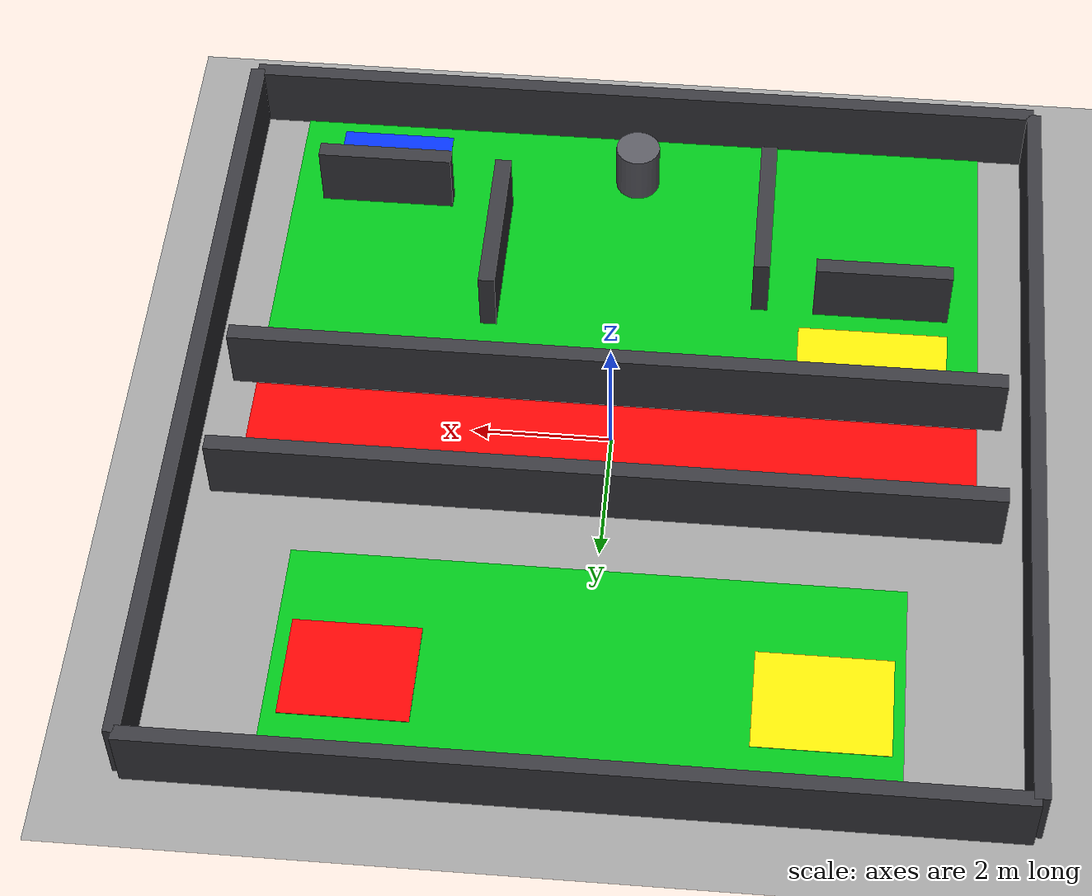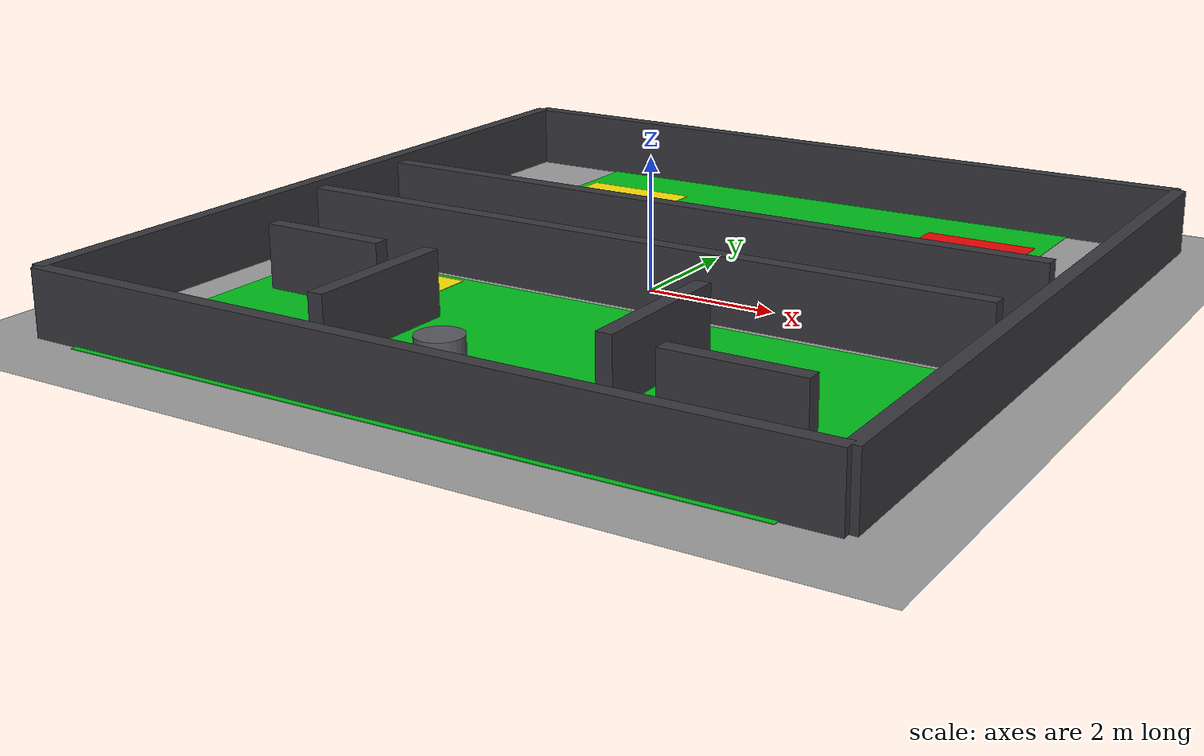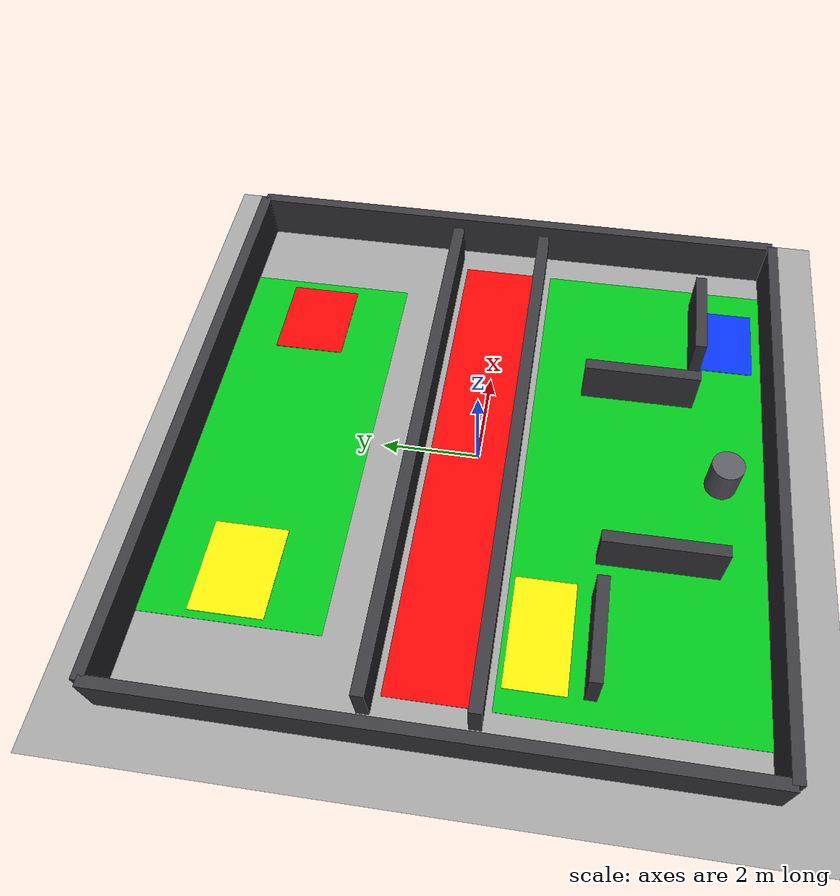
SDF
<?xml version="1.0"?>
<sdf version="1.6">
  <world name="disconnected">
    <gravity>0 0 -9.8</gravity>
    <scene>
      <ambient>0.55 0.55 0.55 1</ambient>
      <background>0.78 0.82 0.86 1</background>
      <shadows>true</shadows>
    </scene>

    <light type="directional" name="sun">
      <cast_shadows>true</cast_shadows>
      <pose>0 0 12 0 0 0</pose>
      <diffuse>0.95 0.95 0.9 1</diffuse>
      <specular>0.15 0.15 0.15 1</specular>
      <direction>-0.35 0.25 -0.9</direction>
    </light>

    <model name="ground_plane">
      <static>true</static>
      <link name="link">
        <collision name="collision">
          <geometry><plane><normal>0 0 1</normal></plane></geometry>
          <surface>
            <friction><ode><mu>1.0</mu><mu2>1.0</mu2></ode></friction>
          </surface>
        </collision>
        <visual name="visual">
          <geometry><plane><normal>0 0 1</normal><size>80 80</size></plane></geometry>
          <material><ambient>0.62 0.62 0.62 1</ambient><diffuse>0.62 0.62 0.62 1</diffuse></material>
        </visual>
      </link>
    </model>

    <model name="green_accessible_south_patrol_area">
      <static>true</static>
      <pose>0 -3.6 0.012 0 0 0</pose>
      <link name="link">
        <visual name="visual">
          <geometry><box><size>10.5 5.2 0.01</size></box></geometry>
          <material><ambient>0.0 0.75 0.1 1</ambient><diffuse>0.0 0.75 0.1 1</diffuse></material>
        </visual>
      </link>
    </model>

    <model name="yellow_sensitive_south_entry">
      <static>true</static>
      <pose>-3.7 -1.7 0.02 0 0 0</pose>
      <link name="link">
        <visual name="visual">
          <geometry><box><size>2.2 1.2 0.01</size></box></geometry>
          <material><ambient>1.0 0.9 0.02 1</ambient><diffuse>1.0 0.9 0.02 1</diffuse></material>
        </visual>
      </link>
    </model>

    <model name="blue_starting_area_already_checked">
      <static>true</static>
      <pose>3.8 -5.0 0.022 0 0 0</pose>
      <link name="link">
        <visual name="visual">
          <geometry><box><size>1.7 1.4 0.01</size></box></geometry>
          <material><ambient>0.02 0.2 1.0 1</ambient><diffuse>0.02 0.2 1.0 1</diffuse></material>
        </visual>
      </link>
    </model>

    <model name="red_cctv_no_go_middle_band">
      <static>true</static>
      <pose>0 0.2 0.024 0 0 0</pose>
      <link name="link">
        <visual name="visual">
          <geometry><box><size>10.5 1.6 0.01</size></box></geometry>
          <material><ambient>0.95 0.02 0.02 1</ambient><diffuse>0.95 0.02 0.02 1</diffuse></material>
        </visual>
      </link>
    </model>

    <model name="green_unreachable_north_room">
      <static>true</static>
      <pose>0 4.2 0.012 0 0 0</pose>
      <link name="link">
        <visual name="visual">
          <geometry><box><size>8.6 3.8 0.01</size></box></geometry>
          <material><ambient>0.0 0.75 0.1 1</ambient><diffuse>0.0 0.75 0.1 1</diffuse></material>
        </visual>
      </link>
    </model>

    <model name="yellow_unreachable_vault_should_not_be_required">
      <static>true</static>
      <pose>-3.2 4.2 0.02 0 0 0</pose>
      <link name="link">
        <visual name="visual">
          <geometry><box><size>1.9 1.5 0.01</size></box></geometry>
          <material><ambient>1.0 0.9 0.02 1</ambient><diffuse>1.0 0.9 0.02 1</diffuse></material>
        </visual>
      </link>
    </model>

    <model name="red_unreachable_camera_corner">
      <static>true</static>
      <pose>3.2 4.2 0.024 0 0 0</pose>
      <link name="link">
        <visual name="visual">
          <geometry><box><size>1.8 1.5 0.01</size></box></geometry>
          <material><ambient>0.95 0.02 0.02 1</ambient><diffuse>0.95 0.02 0.02 1</diffuse></material>
        </visual>
      </link>
    </model>

    <model name="outer_north">
      <static>true</static>
      <pose>0 6.0 0.500 0 0 0</pose>
      <link name="link">
        <collision name="collision"><geometry><box><size>12 0.22 1.0</size></box></geometry></collision>
        <visual name="visual"><geometry><box><size>12 0.22 1.0</size></box></geometry><material><ambient>0.22 0.22 0.24 1</ambient><diffuse>0.22 0.22 0.24 1</diffuse></material></visual>
      </link>
    </model>

    <model name="outer_south">
      <static>true</static>
      <pose>0 -6.0 0.500 0 0 0</pose>
      <link name="link">
        <collision name="collision"><geometry><box><size>12 0.22 1.0</size></box></geometry></collision>
        <visual name="visual"><geometry><box><size>12 0.22 1.0</size></box></geometry><material><ambient>0.22 0.22 0.24 1</ambient><diffuse>0.22 0.22 0.24 1</diffuse></material></visual>
      </link>
    </model>

    <model name="outer_east">
      <static>true</static>
      <pose>6.0 0 0.500 0 0 1.5708</pose>
      <link name="link">
        <collision name="collision"><geometry><box><size>12 0.22 1.0</size></box></geometry></collision>
        <visual name="visual"><geometry><box><size>12 0.22 1.0</size></box></geometry><material><ambient>0.22 0.22 0.24 1</ambient><diffuse>0.22 0.22 0.24 1</diffuse></material></visual>
      </link>
    </model>

    <model name="outer_west">
      <static>true</static>
      <pose>-6.0 0 0.500 0 0 1.5708</pose>
      <link name="link">
        <collision name="collision"><geometry><box><size>12 0.22 1.0</size></box></geometry></collision>
        <visual name="visual"><geometry><box><size>12 0.22 1.0</size></box></geometry><material><ambient>0.22 0.22 0.24 1</ambient><diffuse>0.22 0.22 0.24 1</diffuse></material></visual>
      </link>
    </model>

    <model name="solid_divider_south_side_of_unreachable_room">
      <static>true</static>
      <pose>0 1.25 0.500 0 0 0</pose>
      <link name="link">
        <collision name="collision"><geometry><box><size>11.2 0.24 1.0</size></box></geometry></collision>
        <visual name="visual"><geometry><box><size>11.2 0.24 1.0</size></box></geometry><material><ambient>0.22 0.22 0.24 1</ambient><diffuse>0.22 0.22 0.24 1</diffuse></material></visual>
      </link>
    </model>

    <model name="solid_divider_north_side_of_cctv_band">
      <static>true</static>
      <pose>0 -0.75 0.500 0 0 0</pose>
      <link name="link">
        <collision name="collision"><geometry><box><size>11.2 0.24 1.0</size></box></geometry></collision>
        <visual name="visual"><geometry><box><size>11.2 0.24 1.0</size></box></geometry><material><ambient>0.22 0.22 0.24 1</ambient><diffuse>0.22 0.22 0.24 1</diffuse></material></visual>
      </link>
    </model>

    <model name="south_left_island_wall">
      <static>true</static>
      <pose>-2.0 -3.8 0.500 0 0 0</pose>
      <link name="link">
        <collision name="collision"><geometry><box><size>0.24 2.4 1.0</size></box></geometry></collision>
        <visual name="visual"><geometry><box><size>0.24 2.4 1.0</size></box></geometry><material><ambient>0.22 0.22 0.24 1</ambient><diffuse>0.22 0.22 0.24 1</diffuse></material></visual>
      </link>
    </model>

    <model name="south_right_island_wall">
      <static>true</static>
      <pose>2.0 -3.2 0.500 0 0 0</pose>
      <link name="link">
        <collision name="collision"><geometry><box><size>0.24 2.4 1.0</size></box></geometry></collision>
        <visual name="visual"><geometry><box><size>0.24 2.4 1.0</size></box></geometry><material><ambient>0.22 0.22 0.24 1</ambient><diffuse>0.22 0.22 0.24 1</diffuse></material></visual>
      </link>
    </model>

    <model name="south_cross_wall_left">
      <static>true</static>
      <pose>-3.8 -2.7 0.500 0 0 0</pose>
      <link name="link">
        <collision name="collision"><geometry><box><size>2.0 0.24 1.0</size></box></geometry></collision>
        <visual name="visual"><geometry><box><size>2.0 0.24 1.0</size></box></geometry><material><ambient>0.22 0.22 0.24 1</ambient><diffuse>0.22 0.22 0.24 1</diffuse></material></visual>
      </link>
    </model>

    <model name="south_cross_wall_right">
      <static>true</static>
      <pose>3.8 -4.4 0.500 0 0 0</pose>
      <link name="link">
        <collision name="collision"><geometry><box><size>2.0 0.24 1.0</size></box></geometry></collision>
        <visual name="visual"><geometry><box><size>2.0 0.24 1.0</size></box></geometry><material><ambient>0.22 0.22 0.24 1</ambient><diffuse>0.22 0.22 0.24 1</diffuse></material></visual>
      </link>
    </model>

    <model name="south_lidar_pillar">
      <static>true</static>
      <pose>0 -5.0 0.400 0 0 0</pose>
      <link name="link">
        <collision name="collision"><geometry><cylinder><radius>0.33</radius><length>0.8</length></cylinder></geometry></collision>
        <visual name="visual"><geometry><cylinder><radius>0.33</radius><length>0.8</length></cylinder></geometry><material><ambient>0.35 0.35 0.38 1</ambient><diffuse>0.35 0.35 0.38 1</diffuse></material></visual>
      </link>
    </model>

  </world>
</sdf>
